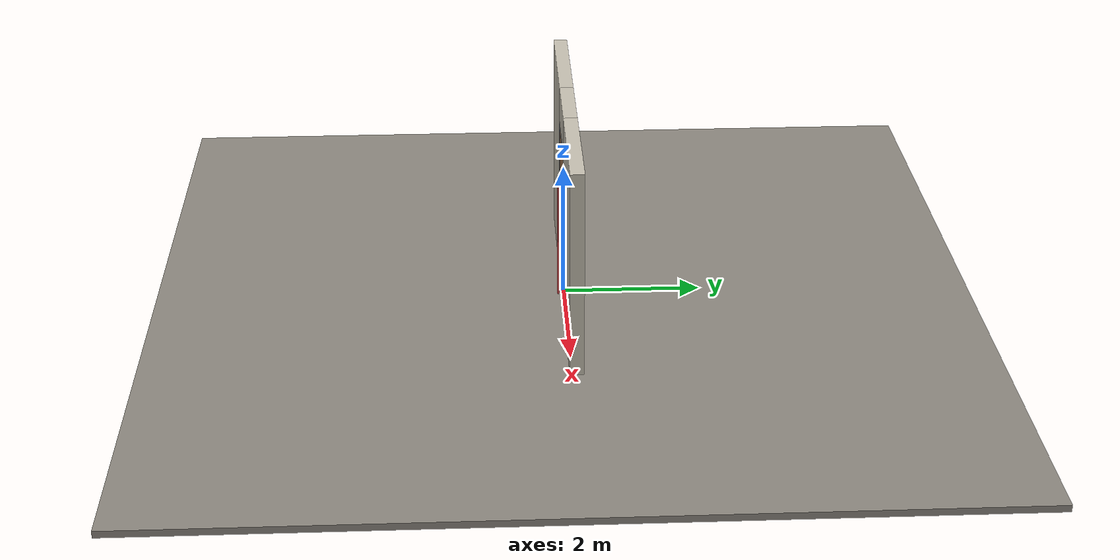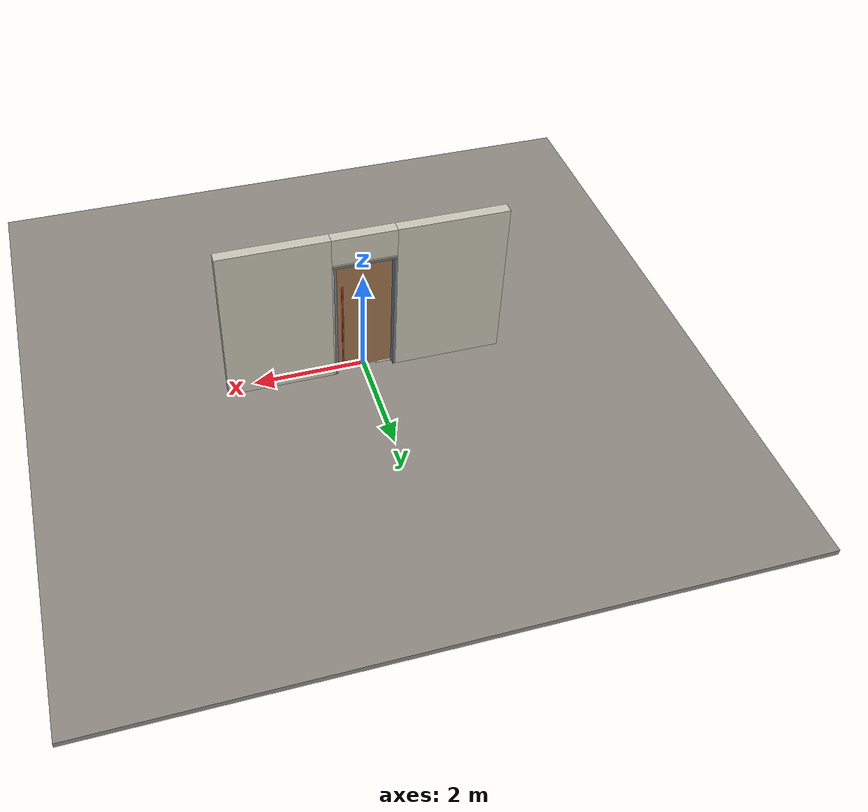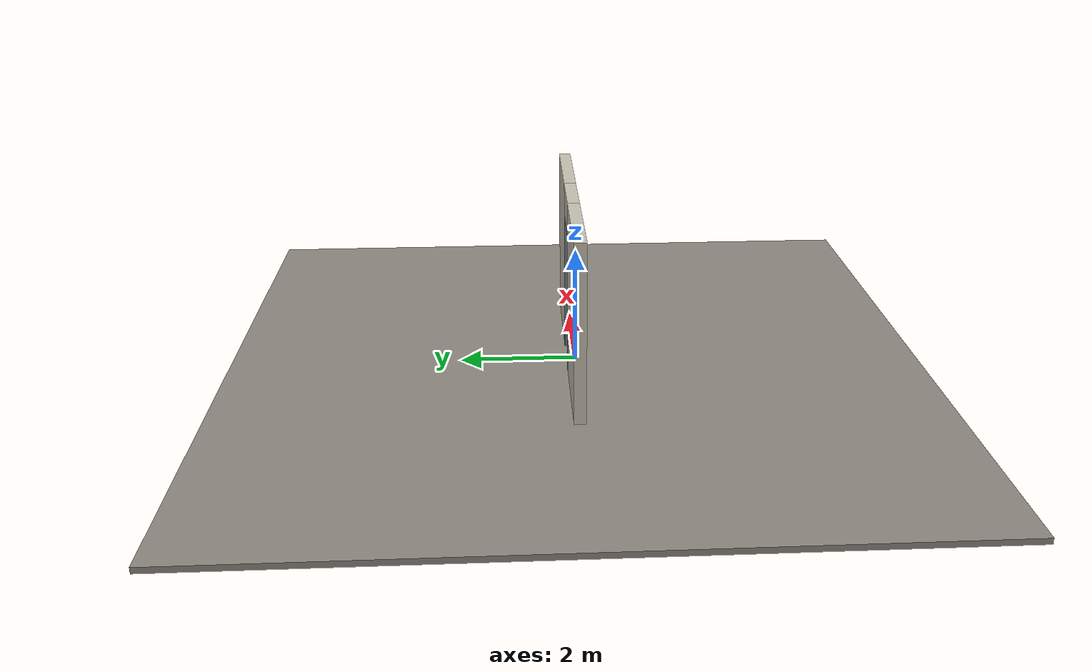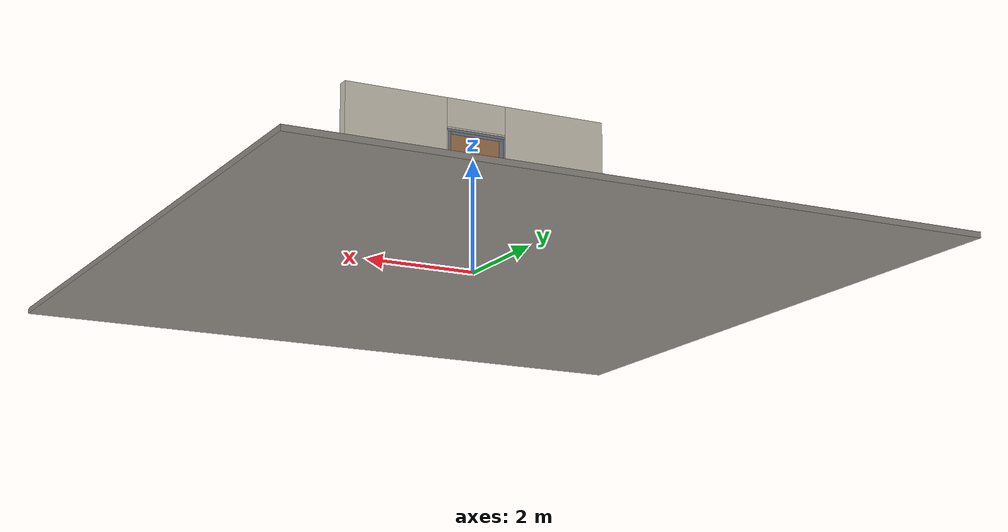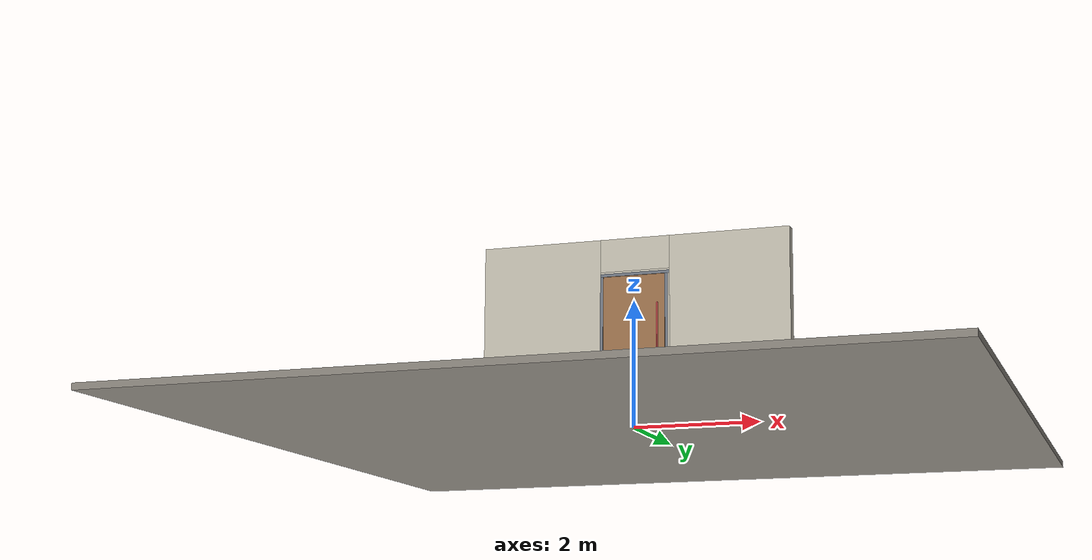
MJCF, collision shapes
<?xml version="1.0" ?>
<mujoco model="db0351_pivot_full">
  <compiler angle="radian" meshdir="../../hardware" texturedir="../../textures" autolimits="true" inertiafromgeom="false"/>
  <option timestep="0.002" integrator="implicitfast" cone="elliptic" impratio="10" noslip_iterations="3">
    <flag multiccd="enable"/>
  </option>
  <size memory="16M"/>
  <default>
    <geom condim="4" solref="0.005 1" solimp="0.95 0.99 0.001"/>
    <joint solreflimit="0.005 1" solimplimit="0.95 0.99 0.001"/>
    <tendon solreflimit="0.005 1"/>
    <equality solref="0.002 1"/>
  </default>
  <visual>
    <headlight ambient="0.4 0.4 0.4" diffuse="0.7 0.7 0.7" specular="0.2 0.2 0.2"/>
    <quality shadowsize="4096"/>
    <map znear="0.01" zfar="60"/>
  </visual>
  <asset>
    <mesh name="pull_897e207f65" file="pull_897e207f65.obj"/>
    <material name="mat_floor" rgba="0.55 0.53 0.5 1" specular="0.2" shininess="0.15" reflectance="0"/>
    <material name="mat_wall" rgba="0.78 0.76 0.7 1" specular="0.2" shininess="0.1" reflectance="0"/>
    <material name="mat_leaf" rgba="0.62 0.45 0.3 1" specular="0.2" shininess="0.5" reflectance="0"/>
    <material name="mat_hinge" rgba="0.65 0.66 0.68 1" specular="0.74" shininess="0.5" reflectance="0.36"/>
    <material name="mat_op_stainless" rgba="0.75 0.76 0.77 1" specular="0.8" shininess="0.65" reflectance="0.4"/>
    <material name="mat_frame" rgba="0.45 0.48 0.52 1" specular="0.32" shininess="0.6" reflectance="0.08"/>
    <material name="mat_closer" rgba="0.75 0.76 0.77 1" specular="0.8" shininess="0.65" reflectance="0.4"/>
    <texture name="skybox" type="skybox" builtin="gradient" rgb1="0.6 0.7 0.85" rgb2="0.9 0.92 0.95" width="256" height="256"/>
  </asset>
  <worldbody>
    <light name="sun" pos="1.5 -2.5 4" dir="-0.3 0.5 -0.8" directional="true" diffuse="0.8 0.8 0.8" specular="0.3 0.3 0.3" castshadow="true"/>
    <light name="fill" pos="-1.5 2.5 3" dir="0.3 -0.5 -0.7" directional="true" diffuse="0.35 0.35 0.4" castshadow="false"/>
    <camera name="robot_view" pos="0 -2.82325 2.01415" xyaxes="1 0 0 0 0.26963 0.962964" fovy="52"/>
    <camera name="far_view" pos="0 2.94925 2.01415" xyaxes="-1 0 0 0 -0.26963 0.962964" fovy="52"/>
    <camera name="iso" pos="2.19355 -2.36145 2.47595" xyaxes="0.741536 0.670913 0 -0.242917 0.268487 0.932151" fovy="46"/>
    <camera name="detail_handle" pos="0.575 -0.895 1.33" xyaxes="0.97561 0.219512 0 -0.070934 0.315262 0.94635" fovy="38"/>
    <geom name="floor" type="box" size="6 6 0.05" pos="0 0 -0.05" material="mat_floor" group="0" contype="1" conaffinity="1" friction="0.8 0.005 0.0001" density="2400"/>
    <geom name="wall_left" type="box" size="0.9745 0.1 1.506" pos="-1.5255 0.063 1.506" material="mat_wall" group="0" contype="1" conaffinity="1" friction="0.6 0.005 0.0001" density="800"/>
    <geom name="wall_right" type="box" size="0.9595 0.1 1.506" pos="1.5405 0.063 1.506" material="mat_wall" group="0" contype="1" conaffinity="1" friction="0.6 0.005 0.0001" density="800"/>
    <geom name="wall_header" type="box" size="0.566 0.1 0.2625" pos="0.015 0.063 2.7495" material="mat_wall" group="0" contype="1" conaffinity="1" friction="0.6 0.005 0.0001" density="800"/>
    <geom name="pivot_bottom_socket" type="box" size="0.035 0.035 0.008" pos="-0.256 0 -0.002" material="mat_hinge" group="1" contype="0" conaffinity="0" density="7850"/>
    <geom name="pivot_top_bracket" type="box" size="0.035 0.035 0.0355" pos="-0.256 0 2.4515" material="mat_hinge" group="1" contype="0" conaffinity="0" density="7850"/>
    <geom name="jamb_hinge" type="box" size="0.0225 0.1 1.206" pos="-0.5285 0.063 1.206" material="mat_frame" group="0" contype="1" conaffinity="1" friction="0.6 0.005 0.0001" density="300"/>
    <geom name="jamb_strike" type="box" size="0.0225 0.1 1.206" pos="0.5285 0.063 1.206" material="mat_frame" group="0" contype="1" conaffinity="1" friction="0.6 0.005 0.0001" density="300"/>
    <geom name="stud_strike" type="box" size="0.015 0.1 1.206" pos="0.566 0.063 1.206" material="mat_wall" group="0" contype="1" conaffinity="1" friction="0.6 0.005 0.0001" density="500"/>
    <geom name="jamb_head" type="box" size="0.566 0.1 0.0225" pos="0.015 0.063 2.4345" material="mat_frame" group="0" contype="1" conaffinity="1" friction="0.6 0.005 0.0001" density="300"/>
    <geom name="head_stud" type="box" size="0.566 0.1 0.015" pos="0.015 0.063 2.472" material="mat_wall" group="0" contype="1" conaffinity="1" friction="0.6 0.005 0.0001" density="500"/>
    <geom name="floor_spring_cover" type="box" size="0.17 0.06 0.002" pos="-0.386 0 0.002" material="mat_closer" group="1" contype="0" conaffinity="0" density="7900"/>
    <site name="approach_point" pos="0 -1.5 0" quat="1 0 0 0" size="0.05" rgba="0.2 0.9 0.2 0.5" group="4"/>
    <site name="goal_point" pos="0 1.5 0" quat="1 0 0 0" size="0.05" rgba="0.2 0.9 0.2 0.5" group="4"/>
    <site name="door_plane_center" pos="0 0 1.206" quat="1 0 0 0" size="0.02" rgba="0.2 0.9 0.2 0.5" group="4"/>
    <body name="leaf" pos="-0.506 0 0">
      <inertial pos="0.569602 0 1.182493" mass="114" quat="0.505852 -0.505852 0.494078 0.494078" diaginertia="10.540724039 51.475768771 61.643103706"/>
      <joint name="leaf_hinge" type="hinge" axis="0 0 -1" pos="0.25 0 0" limited="true" range="0 1.570796" damping="8.43344" frictionloss="2.529739" stiffness="35.039552" springref="-1.679816" armature="0.02"/>
      <geom name="leaf_slab" type="box" size="0.5 0.03 1.2" pos="0.506 0 1.208" material="mat_leaf" group="0" contype="1" conaffinity="1" friction="0.4 0.005 0.0001" density="1"/>
      <geom name="pivot_bottom" type="cylinder" size="0.014 0.004" pos="0.25 0 0.003" material="mat_hinge" group="1" contype="0" conaffinity="0" density="7850"/>
      <geom name="pivot_top" type="cylinder" size="0.014 0.004" pos="0.25 0 2.412" material="mat_hinge" group="1" contype="0" conaffinity="0" density="7850"/>
      <geom name="leaf_pull_n" type="mesh" mesh="pull_897e207f65" pos="0.901 -0.03 1.05" quat="0.707107 0.707107 0 0" material="mat_op_stainless" group="1" contype="0" conaffinity="0" density="3000"/>
      <geom name="leaf_pull_col_n" type="capsule" size="0.016 0.88" pos="0.901 -0.095 1.05" material="mat_op_stainless" group="3" contype="1" conaffinity="1" rgba="0.8 0.3 0.3 0.25" friction="0.7 0.01 0.0001" density="3000"/>
      <geom name="leaf_pull_p" type="mesh" mesh="pull_897e207f65" pos="0.901 0.03 1.05" quat="-0.707107 0.707107 0 0" material="mat_op_stainless" group="1" contype="0" conaffinity="0" density="3000"/>
      <geom name="leaf_pull_col_p" type="capsule" size="0.016 0.88" pos="0.901 0.095 1.05" material="mat_op_stainless" group="3" contype="1" conaffinity="1" rgba="0.8 0.3 0.3 0.25" friction="0.7 0.01 0.0001" density="3000"/>
      <site name="leaf_pull_grip_n" pos="0.901 -0.095 1.05" quat="1 0 0 0" size="0.012" rgba="0.2 0.9 0.2 0.5" group="4"/>
      <site name="leaf_pull_grip_p" pos="0.901 0.095 1.05" quat="1 0 0 0" size="0.012" rgba="0.2 0.9 0.2 0.5" group="4"/>
      <site name="leaf_edge_mid" pos="1.006 0 1.2" quat="1 0 0 0" size="0.02" rgba="0.2 0.9 0.2 0.5" group="4"/>
    </body>
  </worldbody>
  <sensor>
    <jointpos name="leaf_hinge_pos" joint="leaf_hinge"/>
    <jointvel name="leaf_hinge_vel" joint="leaf_hinge"/>
  </sensor>
</mujoco>
